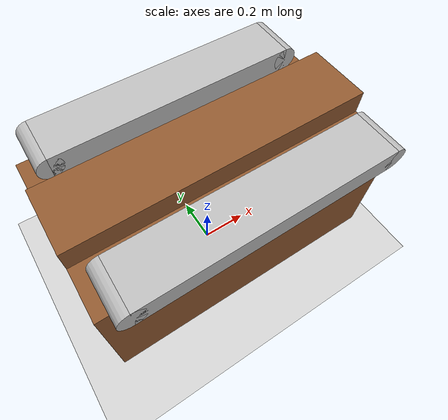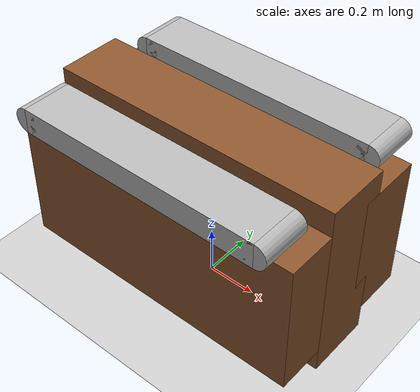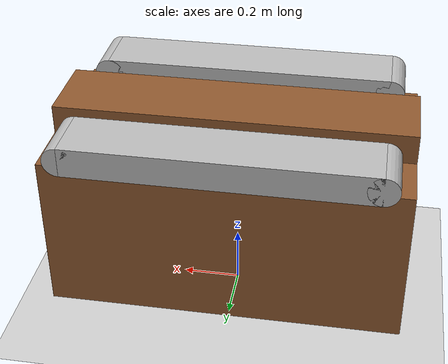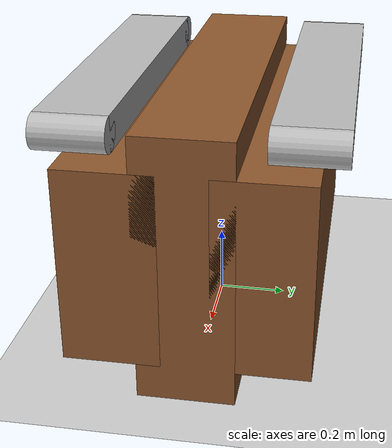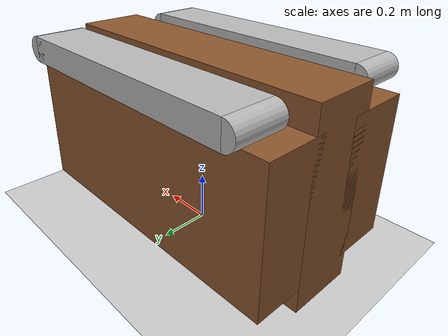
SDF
<?xml version="1.0" ?>
<sdf version="1.7">
    <world name="conveyor_base">
        <physics name="default_physics" type="ode">
            <max_step_size>0.001</max_step_size>
            <real_time_factor>1</real_time_factor>
            <real_time_update_rate>1000</real_time_update_rate>
            <gravity>0 0 -9.81</gravity>
        </physics>
        <plugin
                filename="ignition-gazebo-physics-system"
                name="gz::sim::systems::Physics">
        </plugin>
        <plugin
                filename="ignition-gazebo-user-commands-system"
                name="gz::sim::systems::UserCommands">
        </plugin>
        <plugin
                filename="ignition-gazebo-scene-broadcaster-system"
                name="gz::sim::systems::SceneBroadcaster">
        </plugin>

        <scene>
            <ambient>1.0 1.0 1.0</ambient>
            <background>0.8 0.8 0.8</background>
        </scene>

        <light type="directional" name="sun">
            <cast_shadows>true</cast_shadows>
            <pose>0 0 10 0 0 0</pose>
            <diffuse>0.8 0.8 0.8 1</diffuse>
            <specular>0.8 0.8 0.8 1</specular>
            <attenuation>
                <range>1000</range>
                <constant>0.9</constant>
                <linear>0.01</linear>
                <quadratic>0.001</quadratic>
            </attenuation>
            <direction>-0.5 0.1 -0.9</direction>
        </light>

        <include>
        <uri>https://fuel.gazebosim.org/1.0/OpenRobotics/models/Ground Plane</uri>
        </include>

        <!-- Table (top surface at z = 0.75) -->
        <model name="table">
        <static>true</static>
        <pose>0 0 0.375 0 0 0</pose>
        <link name="link">
            <collision name="col">
            <geometry>
                <box><size>0.4 0.266 0.75</size></box>
            </geometry>
            </collision>
            <visual name="vis">
            <geometry>
                <box><size>1.2 0.266 0.75</size></box>
            </geometry>
            <material>
                <ambient>0.35 0.22 0.12 1</ambient>
                <diffuse>0.55 0.34 0.18 1</diffuse>
                <specular>0.05 0.05 0.05 1</specular>
            </material>
            </visual>
        </link>
        </model>

        <model name="table_c1">
        <static>true</static>
        <pose>0 0.1995 0.375 0 0 0</pose>
        <link name="link">
            <collision name="col">
            <geometry>
                <box><size>0.4 0.266 0.55</size></box>
            </geometry>
            </collision>
            <visual name="vis">
            <geometry>
                <box><size>1.2 0.266 0.55</size></box>
            </geometry>
            <material>
                <ambient>0.35 0.22 0.12 1</ambient>
                <diffuse>0.55 0.34 0.18 1</diffuse>
                <specular>0.05 0.05 0.05 1</specular>
            </material>
            </visual>
        </link>
        </model>

        <model name="table_c2">
        <static>true</static>
        <pose>0 -0.1995 0.375 0 0 0</pose>
        <link name="link">
            <collision name="col">
            <geometry>
                <box><size>1.2 0.266 0.55</size></box>
            </geometry>
            </collision>
            <visual name="vis">
            <geometry>
                <box><size>1.2 0.266 0.55</size></box>
            </geometry>
            <material>
                <ambient>0.35 0.22 0.12 1</ambient>
                <diffuse>0.55 0.34 0.18 1</diffuse>
                <specular>0.05 0.05 0.05 1</specular>
            </material>
            </visual>
        </link>
        </model>

        <model name="conveyor">
            <static>1</static>
            <link name='base_link'>
                <pose>0 0.30 0.71 0 0 0</pose>
                <inertial>
                    <mass>6.06</mass>
                    <inertia>
                        <ixx>0.002731</ixx>
                        <ixy>0</ixy>
                        <ixz>0</ixz>
                        <iyy>0.032554</iyy>
                        <iyz>1.5e-05</iyz>
                        <izz>0.031391</izz>
                    </inertia>
                </inertial>
                <collision name='main_collision'>
                    <pose relative_to='base_link'>0 0 0 0 0 0</pose>
                    <geometry>
                        <box>
                            <size>1 0.2 0.1</size>
                        </box>
                    </geometry>
                    <surface>
                        <friction>
                            <ode>
                                <mu>0.7</mu>
                                <mu2>150</mu2>
                                <fdir1>0 1 0</fdir1>
                            </ode>
                        </friction>
                    </surface>
                </collision>
                <collision name='collision_1'>
                    <pose relative_to='base_link'>0.5 0 0 -1.570796327 0 0</pose>
                    <geometry>
                        <cylinder>
                            <length>0.2</length>
                            <radius>0.05</radius>
                        </cylinder>
                    </geometry>
                    <surface>
                        <friction>
                            <ode>
                                <mu>0.7</mu>
                                <mu2>150</mu2>
                                <fdir1>0 1 0</fdir1>
                            </ode>
                        </friction>
                    </surface>
                </collision>
                <collision name='collision_2'>
                    <pose relative_to='base_link'>-0.5 0 0 -1.570796327 0 0</pose>
                    <geometry>
                        <cylinder>
                            <length>0.2</length>
                            <radius>0.05</radius>
                        </cylinder>
                    </geometry>
                    <surface>
                        <friction>
                            <ode>
                                <mu>0.7</mu>
                                <mu2>150</mu2>
                                <fdir1>0 1 0</fdir1>
                            </ode>
                        </friction>
                    </surface>
                </collision>
                <visual name='main_visual'>
                    <pose relative_to='base_link'>0 0 0 0 0 0</pose>
                    <geometry>
                        <box>
                            <size>1 0.2 0.1</size>
                        </box>
                    </geometry>
                </visual>
                <visual name='visual_1'>
                    <pose relative_to='base_link'>0.5 0 0 -1.570796327 0 0</pose>
                    <geometry>
                        <cylinder>
                            <length>0.2</length>
                            <radius>0.05</radius>
                        </cylinder>
                    </geometry>
                </visual>
                <visual name='visual_2'>
                    <pose relative_to='base_link'>-0.5 0 0 -1.570796327 0 0</pose>
                    <geometry>
                        <cylinder>
                            <length>0.2</length>
                            <radius>0.05</radius>
                        </cylinder>
                    </geometry>
                </visual>
                <gravity>1</gravity>
                <kinematic>0</kinematic>
            </link>

            <plugin filename="libignition-gazebo-track-controller-system.so"
                    name="gz::sim::systems::TrackController">
                <link>base_link</link>
            </plugin>

            <!-- Moving Forward: W -->
            <plugin filename="libignition-gazebo-triggered-publisher-system.so"
                    name="gz::sim::systems::TriggeredPublisher">
                <input type="ignition.msgs.Int32" topic="/keyboard/keypress">
                    <match field="data">87</match>
                </input>
                <output type="ignition.msgs.Double" topic="/model/conveyor/link/base_link/track_cmd_vel">
                    data: 10.0
                </output>
            </plugin>

            <!-- Moving Backward: X -->
            <plugin filename="libignition-gazebo-triggered-publisher-system.so"
                    name="gz::sim::systems::TriggeredPublisher">
                <input type="ignition.msgs.Int32" topic="/keyboard/keypress">
                    <match field="data">88</match>
                </input>
                <output type="ignition.msgs.Double" topic="/model/conveyor/link/base_link/track_cmd_vel">
                    data: -1.0
                </output>
            </plugin>

            <!-- Stop: S -->
            <plugin filename="libignition-gazebo-triggered-publisher-system.so"
                    name="gz::sim::systems::TriggeredPublisher">
                <input type="ignition.msgs.Int32" topic="/keyboard/keypress">
                    <match field="data">83</match>
                </input>
                <output type="ignition.msgs.Double" topic="/model/conveyor/link/base_link/track_cmd_vel">
                    data: 0.0
                </output>
            </plugin>
        </model>

        <model name="conveyor_back">
            <static>1</static>
            <link name='base_link'>
                <pose>0 -0.30 0.71 0 0 0</pose>
                <inertial>
                    <mass>6.06</mass>
                    <inertia>
                        <ixx>0.002731</ixx>
                        <ixy>0</ixy>
                        <ixz>0</ixz>
                        <iyy>0.032554</iyy>
                        <iyz>1.5e-05</iyz>
                        <izz>0.031391</izz>
                    </inertia>
                </inertial>
                <collision name='main_collision'>
                    <pose relative_to='base_link'>0 0 0 0 0 0</pose>
                    <geometry>
                        <box>
                            <size>1 0.2 0.1</size>
                        </box>
                    </geometry>
                    <surface>
                        <friction>
                            <ode>
                                <mu>0.7</mu>
                                <mu2>150</mu2>
                                <fdir1>0 1 0</fdir1>
                            </ode>
                        </friction>
                    </surface>
                </collision>
                <collision name='collision_1'>
                    <pose relative_to='base_link'>0.5 0 0 -1.570796327 0 0</pose>
                    <geometry>
                        <cylinder>
                            <length>0.2</length>
                            <radius>0.05</radius>
                        </cylinder>
                    </geometry>
                    <surface>
                        <friction>
                            <ode>
                                <mu>0.7</mu>
                                <mu2>150</mu2>
                                <fdir1>0 1 0</fdir1>
                            </ode>
                        </friction>
                    </surface>
                </collision>
                <collision name='collision_2'>
                    <pose relative_to='base_link'>-0.5 0 0 -1.570796327 0 0</pose>
                    <geometry>
                        <cylinder>
                            <length>0.2</length>
                            <radius>0.05</radius>
                        </cylinder>
                    </geometry>
                    <surface>
                        <friction>
                            <ode>
                                <mu>0.7</mu>
                                <mu2>150</mu2>
                                <fdir1>0 1 0</fdir1>
                            </ode>
                        </friction>
                    </surface>
                </collision>
                <visual name='main_visual'>
                    <pose relative_to='base_link'>0 0 0 0 0 0</pose>
                    <geometry>
                        <box>
                            <size>1 0.2 0.1</size>
                        </box>
                    </geometry>
                </visual>
                <visual name='visual_1'>
                    <pose relative_to='base_link'>0.5 0 0 -1.570796327 0 0</pose>
                    <geometry>
                        <cylinder>
                            <length>0.2</length>
                            <radius>0.05</radius>
                        </cylinder>
                    </geometry>
                </visual>
                <visual name='visual_2'>
                    <pose relative_to='base_link'>-0.5 0 0 -1.570796327 0 0</pose>
                    <geometry>
                        <cylinder>
                            <length>0.2</length>
                            <radius>0.05</radius>
                        </cylinder>
                    </geometry>
                </visual>
                <gravity>1</gravity>
                <kinematic>0</kinematic>
            </link>

            <plugin filename="libignition-gazebo-track-controller-system.so"
                    name="gz::sim::systems::TrackController">
                <link>base_link</link>
            </plugin>

            <!-- Moving Forward: W -->
            <plugin filename="libignition-gazebo-triggered-publisher-system.so"
                    name="gz::sim::systems::TriggeredPublisher">
                <input type="ignition.msgs.Int32" topic="/keyboard/keypress">
                    <match field="data">87</match>
                </input>
                <output type="ignition.msgs.Double" topic="/model/conveyor_back/link/base_link/track_cmd_vel">
                    data: 10.0
                </output>
            </plugin>

            <!-- Moving Backward: X -->
            <plugin filename="libignition-gazebo-triggered-publisher-system.so"
                    name="gz::sim::systems::TriggeredPublisher">
                <input type="ignition.msgs.Int32" topic="/keyboard/keypress">
                    <match field="data">88</match>
                </input>
                <output type="ignition.msgs.Double" topic="/model/conveyor_back/link/base_link/track_cmd_vel">
                    data: -1.0
                </output>
            </plugin>

            <!-- Stop: S -->
            <plugin filename="libignition-gazebo-triggered-publisher-system.so"
                    name="gz::sim::systems::TriggeredPublisher">
                <input type="ignition.msgs.Int32" topic="/keyboard/keypress">
                    <match field="data">83</match>
                </input>
                <output type="ignition.msgs.Double" topic="/model/conveyor_back/link/base_link/track_cmd_vel">
                    data: 0.0
                </output>
            </plugin>
        </model>

        <gui fullscreen="0">
            <!-- 3D scene -->
            <plugin filename="GzScene3D" name="3D View">
                <ignition-gui>
                    <title>3D View</title>
                    <property type="bool" key="showTitleBar">false</property>
                    <property type="string" key="state">docked</property>
                </ignition-gui>

                <engine>ogre2</engine>
                <scene>scene</scene>
                <ambient_light>0.4 0.4 0.4</ambient_light>
                <background_color>0.8 0.8 0.8</background_color>
                <camera_pose>-6 0 6 0 0.5 0</camera_pose>
            </plugin>

            <!-- World control -->
            <plugin filename="WorldControl" name="World control">
                <ignition-gui>
                    <title>World control</title>
                    <property type="bool" key="showTitleBar">false</property>
                    <property type="bool" key="resizable">false</property>
                    <property type="double" key="height">72</property>
                    <property type="double" key="width">121</property>
                    <property type="double" key="z">1</property>

                    <property type="string" key="state">floating</property>
                    <anchors target="3D View">
                        <line own="left" target="left"/>
                        <line own="bottom" target="bottom"/>
                    </anchors>
                </ignition-gui>

                <play_pause>true</play_pause>
                <step>true</step>

            </plugin>

            <!-- World statistics -->
            <plugin filename="WorldStats" name="World stats">
                <ignition-gui>
                    <title>World stats</title>
                    <property type="bool" key="showTitleBar">false</property>
                    <property type="bool" key="resizable">false</property>
                    <property type="double" key="height">110</property>
                    <property type="double" key="width">290</property>
                    <property type="double" key="z">1</property>

                    <property type="string" key="state">floating</property>
                    <anchors target="3D View">
                        <line own="right" target="right"/>
                        <line own="bottom" target="bottom"/>
                    </anchors>
                </ignition-gui>

                <sim_time>true</sim_time>
                <real_time>true</real_time>
                <real_time_factor>true</real_time_factor>
                <iterations>true</iterations>
            </plugin>

            <!-- Translate / rotate -->
            <plugin filename="TransformControl" name="Transform control">
                <ignition-gui>
                    <title>Transform control</title>
                    <anchors target="3D View">
                        <line own="left" target="left"/>
                        <line own="top" target="top"/>
                    </anchors>
                    <property key="resizable" type="bool">false</property>
                    <property key="width" type="double">230</property>
                    <property key="height" type="double">50</property>
                    <property key="state" type="string">floating</property>
                    <property key="showTitleBar" type="bool">false</property>
                    <property key="cardBackground" type="string">#666666</property>
                </ignition-gui>
            </plugin>

            <!-- Insert simple shapes -->
            <plugin filename="Shapes" name="Shapes">
                <ignition-gui>
                    <anchors target="Transform control">
                        <line own="left" target="right"/>
                        <line own="top" target="top"/>
                    </anchors>
                    <property key="resizable" type="bool">false</property>
                    <property key="width" type="double">200</property>
                    <property key="height" type="double">50</property>
                    <property key="state" type="string">floating</property>
                    <property key="showTitleBar" type="bool">false</property>
                    <property key="cardBackground" type="string">#666666</property>
                </ignition-gui>
            </plugin>

            <plugin filename="KeyPublisher" name="Key publisher">
                <ignition-gui>
                    <anchors target="3D View">
                        <line own="right" target="right"/>
                        <line own="top" target="top"/>
                    </anchors>
                    <property key="resizable" type="bool">false</property>
                    <property key="width" type="double">5</property>
                    <property key="height" type="double">5</property>
                    <property key="state" type="string">floating</property>
                    <property key="showTitleBar" type="bool">false</property>
                </ignition-gui>
            </plugin>

            <plugin filename="VisualizeContacts" name="Visualize Contacts">
                <ignition-gui>
                    <title>Visualize Contacts</title>
                    <anchors target="3D View">
                        <line own="right" target="right"/>
                        <line own="top" target="top"/>
                    </anchors>
                    <property key="resizable" type="bool">false</property>
                    <property key="width" type="double">230</property>
                    <property key="height" type="double">50</property>
                    <property key="state" type="string">floating</property>
                    <property key="showTitleBar" type="bool">false</property>
                    <property key="cardBackground" type="string">#ffffff</property>
                </ignition-gui>
            </plugin>
        </gui>
    </world>
</sdf>
